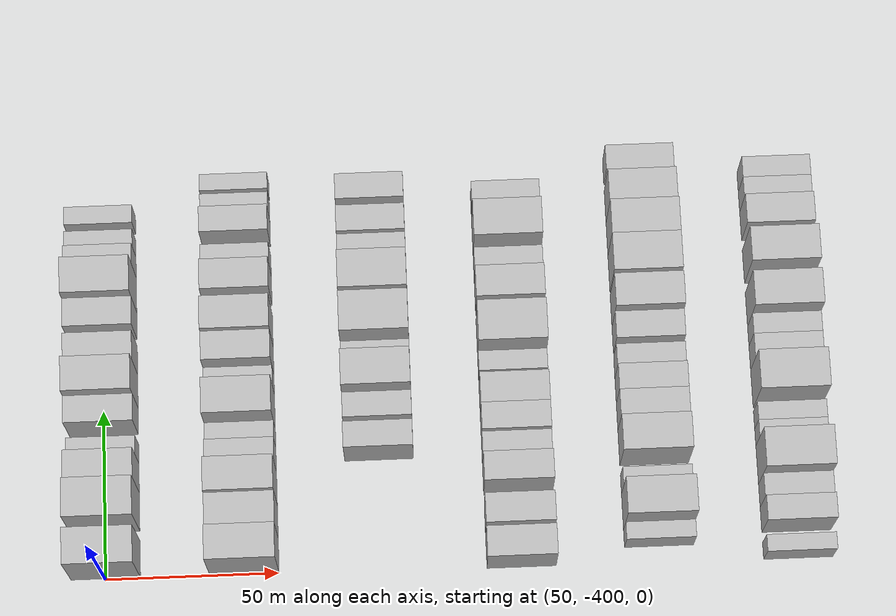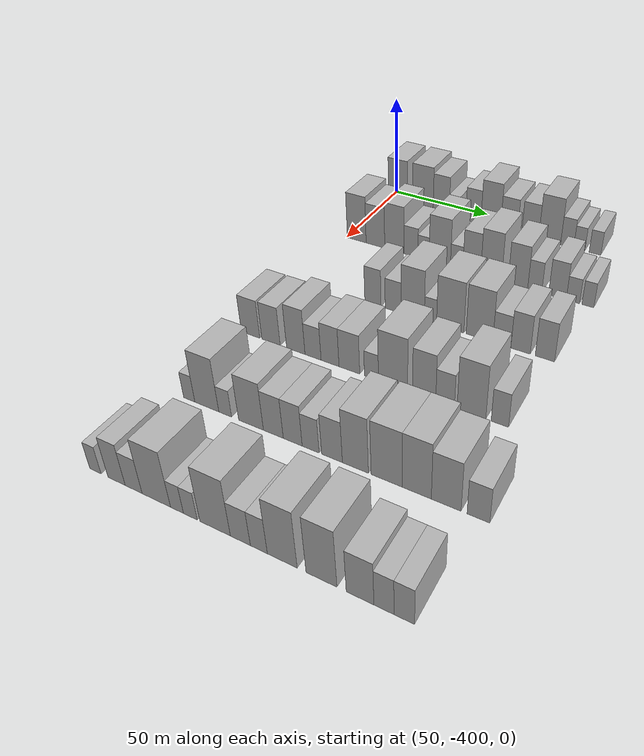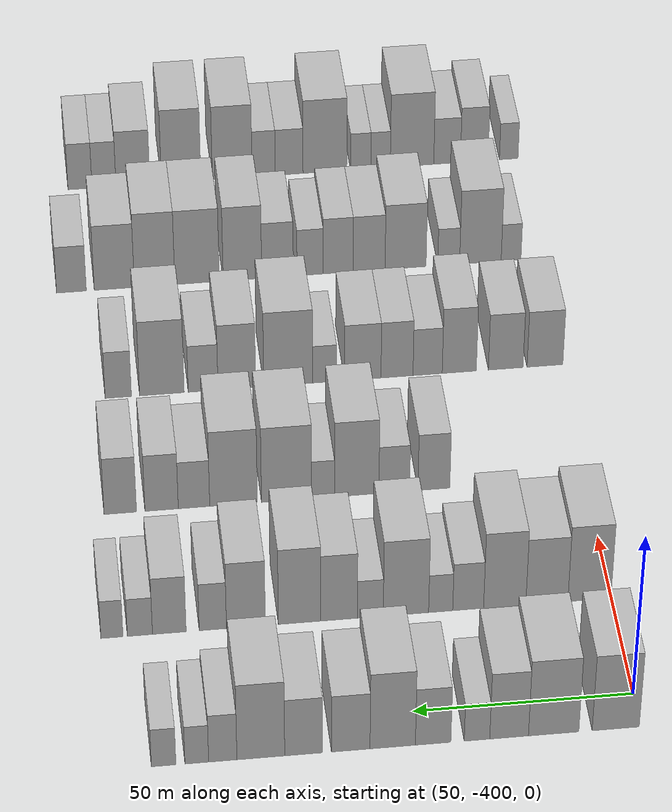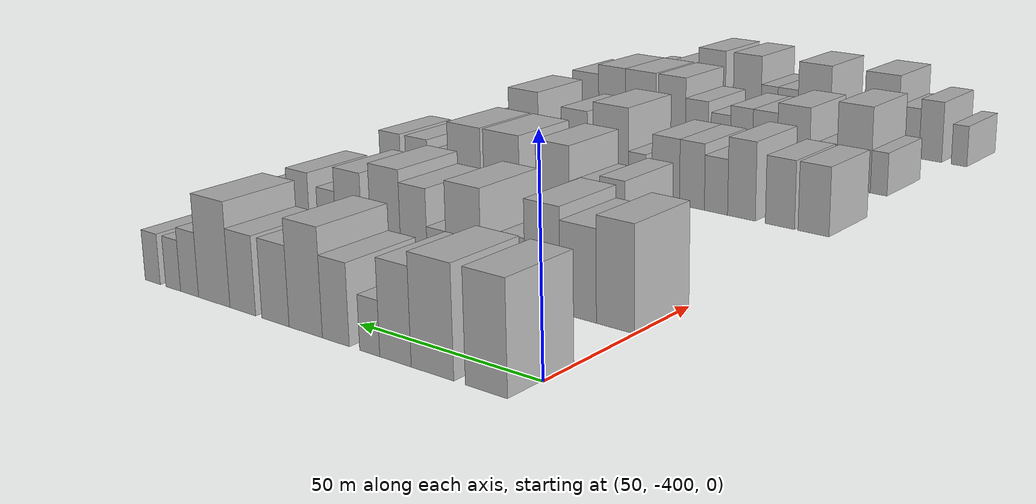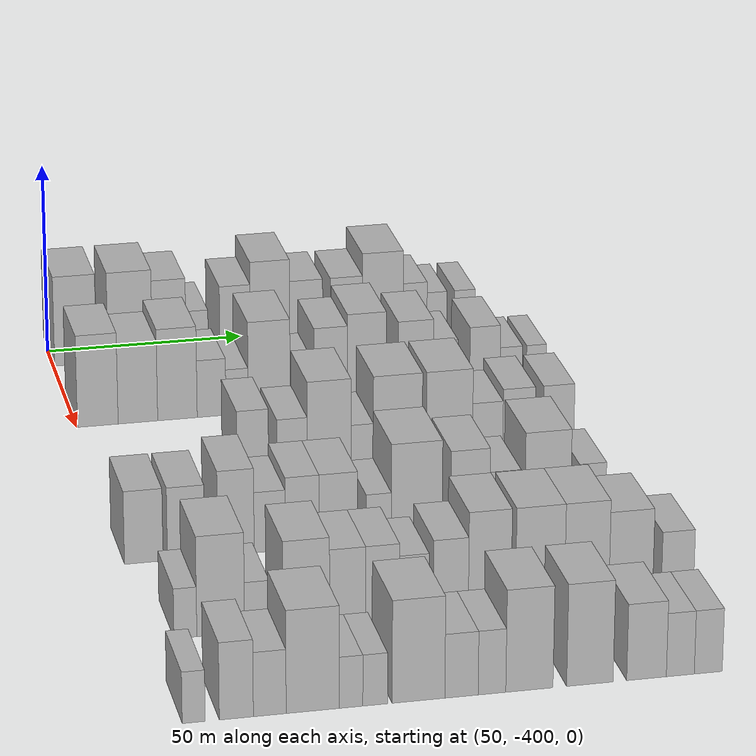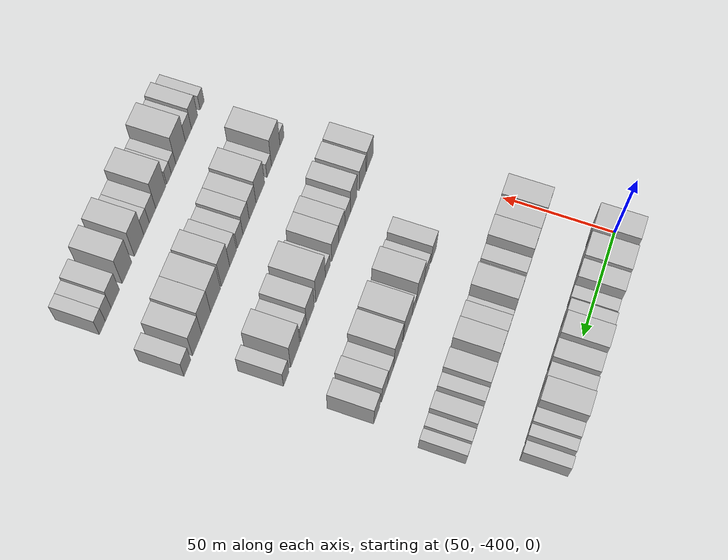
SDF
<sdf version="1.6">
 <world name="default">
  <model name="building_25">
   <static>1</static>
   <pose>50.0000 -394.3219 0 0.000000 0.000000 0.000000</pose>
   <link name="link">
    <pose>0 0 12.00 0 0 0</pose>
    <collision name="collision"><geometry><box><size>20.0000 10.6150 24.0000</size></box></geometry></collision>
    <visual name="visual">
     <cast_shadows>0</cast_shadows>
     <geometry><box><size>20.0000 10.6150 24.0000</size></box></geometry>
     <material>
      <script>
       <uri>model://HANNAS_wall/materials/scripts</uri>
       <uri>model://HANNAS_wall/materials/textures</uri>
       <name>vrc/HANNAS_wall</name>
      </script>
     </material>
    </visual>
   </link>
  </model>
  <model name="building_26">
   <static>1</static>
   <pose>50.0000 -380.3475 0 0.000000 0.000000 0.000000</pose>
   <link name="link">
    <pose>0 0 12.00 0 0 0</pose>
    <collision name="collision"><geometry><box><size>20.0000 11.3338 24.0000</size></box></geometry></collision>
    <visual name="visual">
     <cast_shadows>0</cast_shadows>
     <geometry><box><size>20.0000 11.3338 24.0000</size></box></geometry>
     <material>
      <script>
       <uri>model://HANNAS_wall/materials/scripts</uri>
       <uri>model://HANNAS_wall/materials/textures</uri>
       <name>vrc/HANNAS_wall</name>
      </script>
     </material>
    </visual>
   </link>
  </model>
  <model name="building_27">
   <static>1</static>
   <pose>50.0000 -370.3326 0 0.000000 0.000000 0.000000</pose>
   <link name="link">
    <pose>0 0 10.50 0 0 0</pose>
    <collision name="collision"><geometry><box><size>20.0000 8.6959 21.0000</size></box></geometry></collision>
    <visual name="visual">
     <cast_shadows>0</cast_shadows>
     <geometry><box><size>20.0000 8.6959 21.0000</size></box></geometry>
     <material>
      <script>
       <uri>model://HANNAS_wall/materials/scripts</uri>
       <uri>model://HANNAS_wall/materials/textures</uri>
       <name>vrc/HANNAS_wall</name>
      </script>
     </material>
    </visual>
   </link>
  </model>
  <model name="building_28">
   <static>1</static>
   <pose>50.0000 -363.1280 0 0.000000 0.000000 0.000000</pose>
   <link name="link">
    <pose>0 0 6.00 0 0 0</pose>
    <collision name="collision"><geometry><box><size>20.0000 5.7133 12.0000</size></box></geometry></collision>
    <visual name="visual">
     <cast_shadows>0</cast_shadows>
     <geometry><box><size>20.0000 5.7133 12.0000</size></box></geometry>
     <material>
      <script>
       <uri>model://HANNAS_wall/materials/scripts</uri>
       <uri>model://HANNAS_wall/materials/textures</uri>
       <name>vrc/HANNAS_wall</name>
      </script>
     </material>
    </visual>
   </link>
  </model>
  <model name="building_29">
   <static>1</static>
   <pose>50.0000 -353.3051 0 0.000000 0.000000 0.000000</pose>
   <link name="link">
    <pose>0 0 9.00 0 0 0</pose>
    <collision name="collision"><geometry><box><size>20.0000 7.9326 18.0000</size></box></geometry></collision>
    <visual name="visual">
     <cast_shadows>0</cast_shadows>
     <geometry><box><size>20.0000 7.9326 18.0000</size></box></geometry>
     <material>
      <script>
       <uri>model://HANNAS_wall/materials/scripts</uri>
       <uri>model://HANNAS_wall/materials/textures</uri>
       <name>vrc/HANNAS_wall</name>
      </script>
     </material>
    </visual>
   </link>
  </model>
  <model name="building_30">
   <static>1</static>
   <pose>50.0000 -344.2689 0 0.000000 0.000000 0.000000</pose>
   <link name="link">
    <pose>0 0 12.00 0 0 0</pose>
    <collision name="collision"><geometry><box><size>20.0000 10.1398 24.0000</size></box></geometry></collision>
    <visual name="visual">
     <cast_shadows>0</cast_shadows>
     <geometry><box><size>20.0000 10.1398 24.0000</size></box></geometry>
     <material>
      <script>
       <uri>model://HANNAS_wall/materials/scripts</uri>
       <uri>model://HANNAS_wall/materials/textures</uri>
       <name>vrc/HANNAS_wall</name>
      </script>
     </material>
    </visual>
   </link>
  </model>
  <model name="building_31">
   <static>1</static>
   <pose>50.0000 -334.9038 0 0.000000 0.000000 0.000000</pose>
   <link name="link">
    <pose>0 0 9.00 0 0 0</pose>
    <collision name="collision"><geometry><box><size>20.0000 8.5902 18.0000</size></box></geometry></collision>
    <visual name="visual">
     <cast_shadows>0</cast_shadows>
     <geometry><box><size>20.0000 8.5902 18.0000</size></box></geometry>
     <material>
      <script>
       <uri>model://HANNAS_wall/materials/scripts</uri>
       <uri>model://HANNAS_wall/materials/textures</uri>
       <name>vrc/HANNAS_wall</name>
      </script>
     </material>
    </visual>
   </link>
  </model>
  <model name="building_32">
   <static>1</static>
   <pose>50.0000 -324.4063 0 0.000000 0.000000 0.000000</pose>
   <link name="link">
    <pose>0 0 9.00 0 0 0</pose>
    <collision name="collision"><geometry><box><size>20.0000 8.4047 18.0000</size></box></geometry></collision>
    <visual name="visual">
     <cast_shadows>0</cast_shadows>
     <geometry><box><size>20.0000 8.4047 18.0000</size></box></geometry>
     <material>
      <script>
       <uri>model://HANNAS_wall/materials/scripts</uri>
       <uri>model://HANNAS_wall/materials/textures</uri>
       <name>vrc/HANNAS_wall</name>
      </script>
     </material>
    </visual>
   </link>
  </model>
  <model name="building_33">
   <static>1</static>
   <pose>50.0000 -314.8949 0 0.000000 0.000000 0.000000</pose>
   <link name="link">
    <pose>0 0 12.00 0 0 0</pose>
    <collision name="collision"><geometry><box><size>20.0000 10.6181 24.0000</size></box></geometry></collision>
    <visual name="visual">
     <cast_shadows>0</cast_shadows>
     <geometry><box><size>20.0000 10.6181 24.0000</size></box></geometry>
     <material>
      <script>
       <uri>model://HANNAS_wall/materials/scripts</uri>
       <uri>model://HANNAS_wall/materials/textures</uri>
       <name>vrc/HANNAS_wall</name>
      </script>
     </material>
    </visual>
   </link>
  </model>
  <model name="building_34">
   <static>1</static>
   <pose>50.0000 -306.4508 0 0.000000 0.000000 0.000000</pose>
   <link name="link">
    <pose>0 0 7.50 0 0 0</pose>
    <collision name="collision"><geometry><box><size>20.0000 6.2700 15.0000</size></box></geometry></collision>
    <visual name="visual">
     <cast_shadows>0</cast_shadows>
     <geometry><box><size>20.0000 6.2700 15.0000</size></box></geometry>
     <material>
      <script>
       <uri>model://HANNAS_wall/materials/scripts</uri>
       <uri>model://HANNAS_wall/materials/textures</uri>
       <name>vrc/HANNAS_wall</name>
      </script>
     </material>
    </visual>
   </link>
  </model>
  <model name="building_35">
   <static>1</static>
   <pose>50.0000 -300.6897 0 0.000000 0.000000 0.000000</pose>
   <link name="link">
    <pose>0 0 6.00 0 0 0</pose>
    <collision name="collision"><geometry><box><size>20.0000 5.2523 12.0000</size></box></geometry></collision>
    <visual name="visual">
     <cast_shadows>0</cast_shadows>
     <geometry><box><size>20.0000 5.2523 12.0000</size></box></geometry>
     <material>
      <script>
       <uri>model://HANNAS_wall/materials/scripts</uri>
       <uri>model://HANNAS_wall/materials/textures</uri>
       <name>vrc/HANNAS_wall</name>
      </script>
     </material>
    </visual>
   </link>
  </model>
  <model name="building_36">
   <static>1</static>
   <pose>50.0000 -293.3483 0 0.000000 0.000000 0.000000</pose>
   <link name="link">
    <pose>0 0 6.00 0 0 0</pose>
    <collision name="collision"><geometry><box><size>20.0000 5.4305 12.0000</size></box></geometry></collision>
    <visual name="visual">
     <cast_shadows>0</cast_shadows>
     <geometry><box><size>20.0000 5.4305 12.0000</size></box></geometry>
     <material>
      <script>
       <uri>model://HANNAS_wall/materials/scripts</uri>
       <uri>model://HANNAS_wall/materials/textures</uri>
       <name>vrc/HANNAS_wall</name>
      </script>
     </material>
    </visual>
   </link>
  </model>
  <model name="building_152">
   <static>1</static>
   <pose>90.0000 -394.8087 0 0.000000 0.000000 0.000000</pose>
   <link name="link">
    <pose>0 0 12.00 0 0 0</pose>
    <collision name="collision"><geometry><box><size>20.0000 10.0251 24.0000</size></box></geometry></collision>
    <visual name="visual">
     <cast_shadows>0</cast_shadows>
     <geometry><box><size>20.0000 10.0251 24.0000</size></box></geometry>
     <material>
      <script>
       <uri>model://HANNAS_wall/materials/scripts</uri>
       <uri>model://HANNAS_wall/materials/textures</uri>
       <name>vrc/HANNAS_wall</name>
      </script>
     </material>
    </visual>
   </link>
  </model>
  <model name="building_153">
   <static>1</static>
   <pose>90.0000 -384.9043 0 0.000000 0.000000 0.000000</pose>
   <link name="link">
    <pose>0 0 10.50 0 0 0</pose>
    <collision name="collision"><geometry><box><size>20.0000 9.7839 21.0000</size></box></geometry></collision>
    <visual name="visual">
     <cast_shadows>0</cast_shadows>
     <geometry><box><size>20.0000 9.7839 21.0000</size></box></geometry>
     <material>
      <script>
       <uri>model://HANNAS_wall/materials/scripts</uri>
       <uri>model://HANNAS_wall/materials/textures</uri>
       <name>vrc/HANNAS_wall</name>
      </script>
     </material>
    </visual>
   </link>
  </model>
  <model name="building_154">
   <static>1</static>
   <pose>90.0000 -375.1030 0 0.000000 0.000000 0.000000</pose>
   <link name="link">
    <pose>0 0 12.00 0 0 0</pose>
    <collision name="collision"><geometry><box><size>20.0000 9.8186 24.0000</size></box></geometry></collision>
    <visual name="visual">
     <cast_shadows>0</cast_shadows>
     <geometry><box><size>20.0000 9.8186 24.0000</size></box></geometry>
     <material>
      <script>
       <uri>model://HANNAS_wall/materials/scripts</uri>
       <uri>model://HANNAS_wall/materials/textures</uri>
       <name>vrc/HANNAS_wall</name>
      </script>
     </material>
    </visual>
   </link>
  </model>
  <model name="building_155">
   <static>1</static>
   <pose>90.0000 -366.6122 0 0.000000 0.000000 0.000000</pose>
   <link name="link">
    <pose>0 0 7.50 0 0 0</pose>
    <collision name="collision"><geometry><box><size>20.0000 7.1632 15.0000</size></box></geometry></collision>
    <visual name="visual">
     <cast_shadows>0</cast_shadows>
     <geometry><box><size>20.0000 7.1632 15.0000</size></box></geometry>
     <material>
      <script>
       <uri>model://HANNAS_wall/materials/scripts</uri>
       <uri>model://HANNAS_wall/materials/textures</uri>
       <name>vrc/HANNAS_wall</name>
      </script>
     </material>
    </visual>
   </link>
  </model>
  <model name="building_156">
   <static>1</static>
   <pose>90.0000 -360.2390 0 0.000000 0.000000 0.000000</pose>
   <link name="link">
    <pose>0 0 6.00 0 0 0</pose>
    <collision name="collision"><geometry><box><size>20.0000 5.5831 12.0000</size></box></geometry></collision>
    <visual name="visual">
     <cast_shadows>0</cast_shadows>
     <geometry><box><size>20.0000 5.5831 12.0000</size></box></geometry>
     <material>
      <script>
       <uri>model://HANNAS_wall/materials/scripts</uri>
       <uri>model://HANNAS_wall/materials/textures</uri>
       <name>vrc/HANNAS_wall</name>
      </script>
     </material>
    </visual>
   </link>
  </model>
  <model name="building_157">
   <static>1</static>
   <pose>90.0000 -352.2044 0 0.000000 0.000000 0.000000</pose>
   <link name="link">
    <pose>0 0 12.00 0 0 0</pose>
    <collision name="collision"><geometry><box><size>20.0000 10.4861 24.0000</size></box></geometry></collision>
    <visual name="visual">
     <cast_shadows>0</cast_shadows>
     <geometry><box><size>20.0000 10.4861 24.0000</size></box></geometry>
     <material>
      <script>
       <uri>model://HANNAS_wall/materials/scripts</uri>
       <uri>model://HANNAS_wall/materials/textures</uri>
       <name>vrc/HANNAS_wall</name>
      </script>
     </material>
    </visual>
   </link>
  </model>
  <model name="building_158">
   <static>1</static>
   <pose>90.0000 -343.9725 0 0.000000 0.000000 0.000000</pose>
   <link name="link">
    <pose>0 0 6.00 0 0 0</pose>
    <collision name="collision"><geometry><box><size>20.0000 5.9776 12.0000</size></box></geometry></collision>
    <visual name="visual">
     <cast_shadows>0</cast_shadows>
     <geometry><box><size>20.0000 5.9776 12.0000</size></box></geometry>
     <material>
      <script>
       <uri>model://HANNAS_wall/materials/scripts</uri>
       <uri>model://HANNAS_wall/materials/textures</uri>
       <name>vrc/HANNAS_wall</name>
      </script>
     </material>
    </visual>
   </link>
  </model>
  <model name="building_159">
   <static>1</static>
   <pose>90.0000 -336.7639 0 0.000000 0.000000 0.000000</pose>
   <link name="link">
    <pose>0 0 10.50 0 0 0</pose>
    <collision name="collision"><geometry><box><size>20.0000 8.4398 21.0000</size></box></geometry></collision>
    <visual name="visual">
     <cast_shadows>0</cast_shadows>
     <geometry><box><size>20.0000 8.4398 21.0000</size></box></geometry>
     <material>
      <script>
       <uri>model://HANNAS_wall/materials/scripts</uri>
       <uri>model://HANNAS_wall/materials/textures</uri>
       <name>vrc/HANNAS_wall</name>
      </script>
     </material>
    </visual>
   </link>
  </model>
  <model name="building_160">
   <static>1</static>
   <pose>90.0000 -327.6644 0 0.000000 0.000000 0.000000</pose>
   <link name="link">
    <pose>0 0 12.00 0 0 0</pose>
    <collision name="collision"><geometry><box><size>20.0000 9.7591 24.0000</size></box></geometry></collision>
    <visual name="visual">
     <cast_shadows>0</cast_shadows>
     <geometry><box><size>20.0000 9.7591 24.0000</size></box></geometry>
     <material>
      <script>
       <uri>model://HANNAS_wall/materials/scripts</uri>
       <uri>model://HANNAS_wall/materials/textures</uri>
       <name>vrc/HANNAS_wall</name>
      </script>
     </material>
    </visual>
   </link>
  </model>
  <model name="building_161">
   <static>1</static>
   <pose>90.0000 -315.3187 0 0.000000 0.000000 0.000000</pose>
   <link name="link">
    <pose>0 0 10.50 0 0 0</pose>
    <collision name="collision"><geometry><box><size>20.0000 8.9324 21.0000</size></box></geometry></collision>
    <visual name="visual">
     <cast_shadows>0</cast_shadows>
     <geometry><box><size>20.0000 8.9324 21.0000</size></box></geometry>
     <material>
      <script>
       <uri>model://HANNAS_wall/materials/scripts</uri>
       <uri>model://HANNAS_wall/materials/textures</uri>
       <name>vrc/HANNAS_wall</name>
      </script>
     </material>
    </visual>
   </link>
  </model>
  <model name="building_162">
   <static>1</static>
   <pose>90.0000 -307.7284 0 0.000000 0.000000 0.000000</pose>
   <link name="link">
    <pose>0 0 7.50 0 0 0</pose>
    <collision name="collision"><geometry><box><size>20.0000 6.2482 15.0000</size></box></geometry></collision>
    <visual name="visual">
     <cast_shadows>0</cast_shadows>
     <geometry><box><size>20.0000 6.2482 15.0000</size></box></geometry>
     <material>
      <script>
       <uri>model://HANNAS_wall/materials/scripts</uri>
       <uri>model://HANNAS_wall/materials/textures</uri>
       <name>vrc/HANNAS_wall</name>
      </script>
     </material>
    </visual>
   </link>
  </model>
  <model name="building_163">
   <static>1</static>
   <pose>90.0000 -297.7498 0 0.000000 0.000000 0.000000</pose>
   <link name="link">
    <pose>0 0 9.00 0 0 0</pose>
    <collision name="collision"><geometry><box><size>20.0000 7.7090 18.0000</size></box></geometry></collision>
    <visual name="visual">
     <cast_shadows>0</cast_shadows>
     <geometry><box><size>20.0000 7.7090 18.0000</size></box></geometry>
     <material>
      <script>
       <uri>model://HANNAS_wall/materials/scripts</uri>
       <uri>model://HANNAS_wall/materials/textures</uri>
       <name>vrc/HANNAS_wall</name>
      </script>
     </material>
    </visual>
   </link>
  </model>
  <model name="building_164">
   <static>1</static>
   <pose>90.0000 -291.0226 0 0.000000 0.000000 0.000000</pose>
   <link name="link">
    <pose>0 0 6.00 0 0 0</pose>
    <collision name="collision"><geometry><box><size>20.0000 5.7454 12.0000</size></box></geometry></collision>
    <visual name="visual">
     <cast_shadows>0</cast_shadows>
     <geometry><box><size>20.0000 5.7454 12.0000</size></box></geometry>
     <material>
      <script>
       <uri>model://HANNAS_wall/materials/scripts</uri>
       <uri>model://HANNAS_wall/materials/textures</uri>
       <name>vrc/HANNAS_wall</name>
      </script>
     </material>
    </visual>
   </link>
  </model>
  <model name="building_165">
   <static>1</static>
   <pose>90.0000 -284.6252 0 0.000000 0.000000 0.000000</pose>
   <link name="link">
    <pose>0 0 6.00 0 0 0</pose>
    <collision name="collision"><geometry><box><size>20.0000 5.0494 12.0000</size></box></geometry></collision>
    <visual name="visual">
     <cast_shadows>0</cast_shadows>
     <geometry><box><size>20.0000 5.0494 12.0000</size></box></geometry>
     <material>
      <script>
       <uri>model://HANNAS_wall/materials/scripts</uri>
       <uri>model://HANNAS_wall/materials/textures</uri>
       <name>vrc/HANNAS_wall</name>
      </script>
     </material>
    </visual>
   </link>
  </model>
  <model name="building_288">
   <static>1</static>
   <pose>130.0000 -363.8670 0 0.000000 0.000000 0.000000</pose>
   <link name="link">
    <pose>0 0 9.00 0 0 0</pose>
    <collision name="collision"><geometry><box><size>20.0000 7.6193 18.0000</size></box></geometry></collision>
    <visual name="visual">
     <cast_shadows>0</cast_shadows>
     <geometry><box><size>20.0000 7.6193 18.0000</size></box></geometry>
     <material>
      <script>
       <uri>model://HANNAS_wall/materials/scripts</uri>
       <uri>model://HANNAS_wall/materials/textures</uri>
       <name>vrc/HANNAS_wall</name>
      </script>
     </material>
    </visual>
   </link>
  </model>
  <model name="building_289">
   <static>1</static>
   <pose>130.0000 -354.3891 0 0.000000 0.000000 0.000000</pose>
   <link name="link">
    <pose>0 0 7.50 0 0 0</pose>
    <collision name="collision"><geometry><box><size>20.0000 7.3364 15.0000</size></box></geometry></collision>
    <visual name="visual">
     <cast_shadows>0</cast_shadows>
     <geometry><box><size>20.0000 7.3364 15.0000</size></box></geometry>
     <material>
      <script>
       <uri>model://HANNAS_wall/materials/scripts</uri>
       <uri>model://HANNAS_wall/materials/textures</uri>
       <name>vrc/HANNAS_wall</name>
      </script>
     </material>
    </visual>
   </link>
  </model>
  <model name="building_290">
   <static>1</static>
   <pose>130.0000 -345.4301 0 0.000000 0.000000 0.000000</pose>
   <link name="link">
    <pose>0 0 12.00 0 0 0</pose>
    <collision name="collision"><geometry><box><size>20.0000 10.5818 24.0000</size></box></geometry></collision>
    <visual name="visual">
     <cast_shadows>0</cast_shadows>
     <geometry><box><size>20.0000 10.5818 24.0000</size></box></geometry>
     <material>
      <script>
       <uri>model://HANNAS_wall/materials/scripts</uri>
       <uri>model://HANNAS_wall/materials/textures</uri>
       <name>vrc/HANNAS_wall</name>
      </script>
     </material>
    </visual>
   </link>
  </model>
  <model name="building_291">
   <static>1</static>
   <pose>130.0000 -337.4104 0 0.000000 0.000000 0.000000</pose>
   <link name="link">
    <pose>0 0 6.00 0 0 0</pose>
    <collision name="collision"><geometry><box><size>20.0000 5.4574 12.0000</size></box></geometry></collision>
    <visual name="visual">
     <cast_shadows>0</cast_shadows>
     <geometry><box><size>20.0000 5.4574 12.0000</size></box></geometry>
     <material>
      <script>
       <uri>model://HANNAS_wall/materials/scripts</uri>
       <uri>model://HANNAS_wall/materials/textures</uri>
       <name>vrc/HANNAS_wall</name>
      </script>
     </material>
    </visual>
   </link>
  </model>
  <model name="building_292">
   <static>1</static>
   <pose>130.0000 -328.7265 0 0.000000 0.000000 0.000000</pose>
   <link name="link">
    <pose>0 0 12.00 0 0 0</pose>
    <collision name="collision"><geometry><box><size>20.0000 11.9105 24.0000</size></box></geometry></collision>
    <visual name="visual">
     <cast_shadows>0</cast_shadows>
     <geometry><box><size>20.0000 11.9105 24.0000</size></box></geometry>
     <material>
      <script>
       <uri>model://HANNAS_wall/materials/scripts</uri>
       <uri>model://HANNAS_wall/materials/textures</uri>
       <name>vrc/HANNAS_wall</name>
      </script>
     </material>
    </visual>
   </link>
  </model>
  <model name="building_293">
   <static>1</static>
   <pose>130.0000 -316.1208 0 0.000000 0.000000 0.000000</pose>
   <link name="link">
    <pose>0 0 12.00 0 0 0</pose>
    <collision name="collision"><geometry><box><size>20.0000 11.3008 24.0000</size></box></geometry></collision>
    <visual name="visual">
     <cast_shadows>0</cast_shadows>
     <geometry><box><size>20.0000 11.3008 24.0000</size></box></geometry>
     <material>
      <script>
       <uri>model://HANNAS_wall/materials/scripts</uri>
       <uri>model://HANNAS_wall/materials/textures</uri>
       <name>vrc/HANNAS_wall</name>
      </script>
     </material>
    </visual>
   </link>
  </model>
  <model name="building_294">
   <static>1</static>
   <pose>130.0000 -306.7456 0 0.000000 0.000000 0.000000</pose>
   <link name="link">
    <pose>0 0 7.50 0 0 0</pose>
    <collision name="collision"><geometry><box><size>20.0000 7.4498 15.0000</size></box></geometry></collision>
    <visual name="visual">
     <cast_shadows>0</cast_shadows>
     <geometry><box><size>20.0000 7.4498 15.0000</size></box></geometry>
     <material>
      <script>
       <uri>model://HANNAS_wall/materials/scripts</uri>
       <uri>model://HANNAS_wall/materials/textures</uri>
       <name>vrc/HANNAS_wall</name>
      </script>
     </material>
    </visual>
   </link>
  </model>
  <model name="building_295">
   <static>1</static>
   <pose>130.0000 -299.0761 0 0.000000 0.000000 0.000000</pose>
   <link name="link">
    <pose>0 0 9.00 0 0 0</pose>
    <collision name="collision"><geometry><box><size>20.0000 7.8892 18.0000</size></box></geometry></collision>
    <visual name="visual">
     <cast_shadows>0</cast_shadows>
     <geometry><box><size>20.0000 7.8892 18.0000</size></box></geometry>
     <material>
      <script>
       <uri>model://HANNAS_wall/materials/scripts</uri>
       <uri>model://HANNAS_wall/materials/textures</uri>
       <name>vrc/HANNAS_wall</name>
      </script>
     </material>
    </visual>
   </link>
  </model>
  <model name="building_296">
   <static>1</static>
   <pose>130.0000 -289.2991 0 0.000000 0.000000 0.000000</pose>
   <link name="link">
    <pose>0 0 9.00 0 0 0</pose>
    <collision name="collision"><geometry><box><size>20.0000 7.6648 18.0000</size></box></geometry></collision>
    <visual name="visual">
     <cast_shadows>0</cast_shadows>
     <geometry><box><size>20.0000 7.6648 18.0000</size></box></geometry>
     <material>
      <script>
       <uri>model://HANNAS_wall/materials/scripts</uri>
       <uri>model://HANNAS_wall/materials/textures</uri>
       <name>vrc/HANNAS_wall</name>
      </script>
     </material>
    </visual>
   </link>
  </model>
  <model name="building_423">
   <static>1</static>
   <pose>170.0000 -396.5882 0 0.000000 0.000000 0.000000</pose>
   <link name="link">
    <pose>0 0 9.00 0 0 0</pose>
    <collision name="collision"><geometry><box><size>20.0000 8.8691 18.0000</size></box></geometry></collision>
    <visual name="visual">
     <cast_shadows>0</cast_shadows>
     <geometry><box><size>20.0000 8.8691 18.0000</size></box></geometry>
     <material>
      <script>
       <uri>model://HANNAS_wall/materials/scripts</uri>
       <uri>model://HANNAS_wall/materials/textures</uri>
       <name>vrc/HANNAS_wall</name>
      </script>
     </material>
    </visual>
   </link>
  </model>
  <model name="building_424">
   <static>1</static>
   <pose>170.0000 -386.8566 0 0.000000 0.000000 0.000000</pose>
   <link name="link">
    <pose>0 0 9.00 0 0 0</pose>
    <collision name="collision"><geometry><box><size>20.0000 8.5940 18.0000</size></box></geometry></collision>
    <visual name="visual">
     <cast_shadows>0</cast_shadows>
     <geometry><box><size>20.0000 8.5940 18.0000</size></box></geometry>
     <material>
      <script>
       <uri>model://HANNAS_wall/materials/scripts</uri>
       <uri>model://HANNAS_wall/materials/textures</uri>
       <name>vrc/HANNAS_wall</name>
      </script>
     </material>
    </visual>
   </link>
  </model>
  <model name="building_425">
   <static>1</static>
   <pose>170.0000 -375.3419 0 0.000000 0.000000 0.000000</pose>
   <link name="link">
    <pose>0 0 10.50 0 0 0</pose>
    <collision name="collision"><geometry><box><size>20.0000 8.4355 21.0000</size></box></geometry></collision>
    <visual name="visual">
     <cast_shadows>0</cast_shadows>
     <geometry><box><size>20.0000 8.4355 21.0000</size></box></geometry>
     <material>
      <script>
       <uri>model://HANNAS_wall/materials/scripts</uri>
       <uri>model://HANNAS_wall/materials/textures</uri>
       <name>vrc/HANNAS_wall</name>
      </script>
     </material>
    </visual>
   </link>
  </model>
  <model name="building_426">
   <static>1</static>
   <pose>170.0000 -367.5166 0 0.000000 0.000000 0.000000</pose>
   <link name="link">
    <pose>0 0 7.50 0 0 0</pose>
    <collision name="collision"><geometry><box><size>20.0000 7.2151 15.0000</size></box></geometry></collision>
    <visual name="visual">
     <cast_shadows>0</cast_shadows>
     <geometry><box><size>20.0000 7.2151 15.0000</size></box></geometry>
     <material>
      <script>
       <uri>model://HANNAS_wall/materials/scripts</uri>
       <uri>model://HANNAS_wall/materials/textures</uri>
       <name>vrc/HANNAS_wall</name>
      </script>
     </material>
    </visual>
   </link>
  </model>
  <model name="building_427">
   <static>1</static>
   <pose>170.0000 -359.9571 0 0.000000 0.000000 0.000000</pose>
   <link name="link">
    <pose>0 0 9.00 0 0 0</pose>
    <collision name="collision"><geometry><box><size>20.0000 7.9039 18.0000</size></box></geometry></collision>
    <visual name="visual">
     <cast_shadows>0</cast_shadows>
     <geometry><box><size>20.0000 7.9039 18.0000</size></box></geometry>
     <material>
      <script>
       <uri>model://HANNAS_wall/materials/scripts</uri>
       <uri>model://HANNAS_wall/materials/textures</uri>
       <name>vrc/HANNAS_wall</name>
      </script>
     </material>
    </visual>
   </link>
  </model>
  <model name="building_428">
   <static>1</static>
   <pose>170.0000 -351.5318 0 0.000000 0.000000 0.000000</pose>
   <link name="link">
    <pose>0 0 9.00 0 0 0</pose>
    <collision name="collision"><geometry><box><size>20.0000 8.9468 18.0000</size></box></geometry></collision>
    <visual name="visual">
     <cast_shadows>0</cast_shadows>
     <geometry><box><size>20.0000 8.9468 18.0000</size></box></geometry>
     <material>
      <script>
       <uri>model://HANNAS_wall/materials/scripts</uri>
       <uri>model://HANNAS_wall/materials/textures</uri>
       <name>vrc/HANNAS_wall</name>
      </script>
     </material>
    </visual>
   </link>
  </model>
  <model name="building_429">
   <static>1</static>
   <pose>170.0000 -342.1052 0 0.000000 0.000000 0.000000</pose>
   <link name="link">
    <pose>0 0 6.00 0 0 0</pose>
    <collision name="collision"><geometry><box><size>20.0000 5.9064 12.0000</size></box></geometry></collision>
    <visual name="visual">
     <cast_shadows>0</cast_shadows>
     <geometry><box><size>20.0000 5.9064 12.0000</size></box></geometry>
     <material>
      <script>
       <uri>model://HANNAS_wall/materials/scripts</uri>
       <uri>model://HANNAS_wall/materials/textures</uri>
       <name>vrc/HANNAS_wall</name>
      </script>
     </material>
    </visual>
   </link>
  </model>
  <model name="building_430">
   <static>1</static>
   <pose>170.0000 -333.1691 0 0.000000 0.000000 0.000000</pose>
   <link name="link">
    <pose>0 0 12.00 0 0 0</pose>
    <collision name="collision"><geometry><box><size>20.0000 11.9658 24.0000</size></box></geometry></collision>
    <visual name="visual">
     <cast_shadows>0</cast_shadows>
     <geometry><box><size>20.0000 11.9658 24.0000</size></box></geometry>
     <material>
      <script>
       <uri>model://HANNAS_wall/materials/scripts</uri>
       <uri>model://HANNAS_wall/materials/textures</uri>
       <name>vrc/HANNAS_wall</name>
      </script>
     </material>
    </visual>
   </link>
  </model>
  <model name="building_431">
   <static>1</static>
   <pose>170.0000 -320.5697 0 0.000000 0.000000 0.000000</pose>
   <link name="link">
    <pose>0 0 10.50 0 0 0</pose>
    <collision name="collision"><geometry><box><size>20.0000 9.2330 21.0000</size></box></geometry></collision>
    <visual name="visual">
     <cast_shadows>0</cast_shadows>
     <geometry><box><size>20.0000 9.2330 21.0000</size></box></geometry>
     <material>
      <script>
       <uri>model://HANNAS_wall/materials/scripts</uri>
       <uri>model://HANNAS_wall/materials/textures</uri>
       <name>vrc/HANNAS_wall</name>
      </script>
     </material>
    </visual>
   </link>
  </model>
  <model name="building_432">
   <static>1</static>
   <pose>170.0000 -312.3122 0 0.000000 0.000000 0.000000</pose>
   <link name="link">
    <pose>0 0 7.50 0 0 0</pose>
    <collision name="collision"><geometry><box><size>20.0000 7.2821 15.0000</size></box></geometry></collision>
    <visual name="visual">
     <cast_shadows>0</cast_shadows>
     <geometry><box><size>20.0000 7.2821 15.0000</size></box></geometry>
     <material>
      <script>
       <uri>model://HANNAS_wall/materials/scripts</uri>
       <uri>model://HANNAS_wall/materials/textures</uri>
       <name>vrc/HANNAS_wall</name>
      </script>
     </material>
    </visual>
   </link>
  </model>
  <model name="building_433">
   <static>1</static>
   <pose>170.0000 -302.2268 0 0.000000 0.000000 0.000000</pose>
   <link name="link">
    <pose>0 0 12.00 0 0 0</pose>
    <collision name="collision"><geometry><box><size>20.0000 10.8887 24.0000</size></box></geometry></collision>
    <visual name="visual">
     <cast_shadows>0</cast_shadows>
     <geometry><box><size>20.0000 10.8887 24.0000</size></box></geometry>
     <material>
      <script>
       <uri>model://HANNAS_wall/materials/scripts</uri>
       <uri>model://HANNAS_wall/materials/textures</uri>
       <name>vrc/HANNAS_wall</name>
      </script>
     </material>
    </visual>
   </link>
  </model>
  <model name="building_434">
   <static>1</static>
   <pose>170.0000 -291.5746 0 0.000000 0.000000 0.000000</pose>
   <link name="link">
    <pose>0 0 7.50 0 0 0</pose>
    <collision name="collision"><geometry><box><size>20.0000 6.4157 15.0000</size></box></geometry></collision>
    <visual name="visual">
     <cast_shadows>0</cast_shadows>
     <geometry><box><size>20.0000 6.4157 15.0000</size></box></geometry>
     <material>
      <script>
       <uri>model://HANNAS_wall/materials/scripts</uri>
       <uri>model://HANNAS_wall/materials/textures</uri>
       <name>vrc/HANNAS_wall</name>
      </script>
     </material>
    </visual>
   </link>
  </model>
  <model name="building_563">
   <static>1</static>
   <pose>210.0000 -393.9722 0 0.000000 0.000000 0.000000</pose>
   <link name="link">
    <pose>0 0 6.00 0 0 0</pose>
    <collision name="collision"><geometry><box><size>20.0000 5.0596 12.0000</size></box></geometry></collision>
    <visual name="visual">
     <cast_shadows>0</cast_shadows>
     <geometry><box><size>20.0000 5.0596 12.0000</size></box></geometry>
     <material>
      <script>
       <uri>model://HANNAS_wall/materials/scripts</uri>
       <uri>model://HANNAS_wall/materials/textures</uri>
       <name>vrc/HANNAS_wall</name>
      </script>
     </material>
    </visual>
   </link>
  </model>
  <model name="building_564">
   <static>1</static>
   <pose>210.0000 -386.1368 0 0.000000 0.000000 0.000000</pose>
   <link name="link">
    <pose>0 0 12.00 0 0 0</pose>
    <collision name="collision"><geometry><box><size>20.0000 10.6112 24.0000</size></box></geometry></collision>
    <visual name="visual">
     <cast_shadows>0</cast_shadows>
     <geometry><box><size>20.0000 10.6112 24.0000</size></box></geometry>
     <material>
      <script>
       <uri>model://HANNAS_wall/materials/scripts</uri>
       <uri>model://HANNAS_wall/materials/textures</uri>
       <name>vrc/HANNAS_wall</name>
      </script>
     </material>
    </visual>
   </link>
  </model>
  <model name="building_565">
   <static>1</static>
   <pose>210.0000 -378.0502 0 0.000000 0.000000 0.000000</pose>
   <link name="link">
    <pose>0 0 6.00 0 0 0</pose>
    <collision name="collision"><geometry><box><size>20.0000 5.5619 12.0000</size></box></geometry></collision>
    <visual name="visual">
     <cast_shadows>0</cast_shadows>
     <geometry><box><size>20.0000 5.5619 12.0000</size></box></geometry>
     <material>
      <script>
       <uri>model://HANNAS_wall/materials/scripts</uri>
       <uri>model://HANNAS_wall/materials/textures</uri>
       <name>vrc/HANNAS_wall</name>
      </script>
     </material>
    </visual>
   </link>
  </model>
  <model name="building_566">
   <static>1</static>
   <pose>210.0000 -367.0544 0 0.000000 0.000000 0.000000</pose>
   <link name="link">
    <pose>0 0 10.50 0 0 0</pose>
    <collision name="collision"><geometry><box><size>20.0000 10.4298 21.0000</size></box></geometry></collision>
    <visual name="visual">
     <cast_shadows>0</cast_shadows>
     <geometry><box><size>20.0000 10.4298 21.0000</size></box></geometry>
     <material>
      <script>
       <uri>model://HANNAS_wall/materials/scripts</uri>
       <uri>model://HANNAS_wall/materials/textures</uri>
       <name>vrc/HANNAS_wall</name>
      </script>
     </material>
    </visual>
   </link>
  </model>
  <model name="building_567">
   <static>1</static>
   <pose>210.0000 -357.7720 0 0.000000 0.000000 0.000000</pose>
   <link name="link">
    <pose>0 0 9.00 0 0 0</pose>
    <collision name="collision"><geometry><box><size>20.0000 8.1350 18.0000</size></box></geometry></collision>
    <visual name="visual">
     <cast_shadows>0</cast_shadows>
     <geometry><box><size>20.0000 8.1350 18.0000</size></box></geometry>
     <material>
      <script>
       <uri>model://HANNAS_wall/materials/scripts</uri>
       <uri>model://HANNAS_wall/materials/textures</uri>
       <name>vrc/HANNAS_wall</name>
      </script>
     </material>
    </visual>
   </link>
  </model>
  <model name="building_568">
   <static>1</static>
   <pose>210.0000 -349.9142 0 0.000000 0.000000 0.000000</pose>
   <link name="link">
    <pose>0 0 9.00 0 0 0</pose>
    <collision name="collision"><geometry><box><size>20.0000 7.5805 18.0000</size></box></geometry></collision>
    <visual name="visual">
     <cast_shadows>0</cast_shadows>
     <geometry><box><size>20.0000 7.5805 18.0000</size></box></geometry>
     <material>
      <script>
       <uri>model://HANNAS_wall/materials/scripts</uri>
       <uri>model://HANNAS_wall/materials/textures</uri>
       <name>vrc/HANNAS_wall</name>
      </script>
     </material>
    </visual>
   </link>
  </model>
  <model name="building_569">
   <static>1</static>
   <pose>210.0000 -342.7987 0 0.000000 0.000000 0.000000</pose>
   <link name="link">
    <pose>0 0 7.50 0 0 0</pose>
    <collision name="collision"><geometry><box><size>20.0000 6.6505 15.0000</size></box></geometry></collision>
    <visual name="visual">
     <cast_shadows>0</cast_shadows>
     <geometry><box><size>20.0000 6.6505 15.0000</size></box></geometry>
     <material>
      <script>
       <uri>model://HANNAS_wall/materials/scripts</uri>
       <uri>model://HANNAS_wall/materials/textures</uri>
       <name>vrc/HANNAS_wall</name>
      </script>
     </material>
    </visual>
   </link>
  </model>
  <model name="building_570">
   <static>1</static>
   <pose>210.0000 -334.5000 0 0.000000 0.000000 0.000000</pose>
   <link name="link">
    <pose>0 0 9.00 0 0 0</pose>
    <collision name="collision"><geometry><box><size>20.0000 7.9470 18.0000</size></box></geometry></collision>
    <visual name="visual">
     <cast_shadows>0</cast_shadows>
     <geometry><box><size>20.0000 7.9470 18.0000</size></box></geometry>
     <material>
      <script>
       <uri>model://HANNAS_wall/materials/scripts</uri>
       <uri>model://HANNAS_wall/materials/textures</uri>
       <name>vrc/HANNAS_wall</name>
      </script>
     </material>
    </visual>
   </link>
  </model>
  <model name="building_571">
   <static>1</static>
   <pose>210.0000 -325.6619 0 0.000000 0.000000 0.000000</pose>
   <link name="link">
    <pose>0 0 12.00 0 0 0</pose>
    <collision name="collision"><geometry><box><size>20.0000 9.7293 24.0000</size></box></geometry></collision>
    <visual name="visual">
     <cast_shadows>0</cast_shadows>
     <geometry><box><size>20.0000 9.7293 24.0000</size></box></geometry>
     <material>
      <script>
       <uri>model://HANNAS_wall/materials/scripts</uri>
       <uri>model://HANNAS_wall/materials/textures</uri>
       <name>vrc/HANNAS_wall</name>
      </script>
     </material>
    </visual>
   </link>
  </model>
  <model name="building_572">
   <static>1</static>
   <pose>210.0000 -314.1936 0 0.000000 0.000000 0.000000</pose>
   <link name="link">
    <pose>0 0 12.00 0 0 0</pose>
    <collision name="collision"><geometry><box><size>20.0000 11.2071 24.0000</size></box></geometry></collision>
    <visual name="visual">
     <cast_shadows>0</cast_shadows>
     <geometry><box><size>20.0000 11.2071 24.0000</size></box></geometry>
     <material>
      <script>
       <uri>model://HANNAS_wall/materials/scripts</uri>
       <uri>model://HANNAS_wall/materials/textures</uri>
       <name>vrc/HANNAS_wall</name>
      </script>
     </material>
    </visual>
   </link>
  </model>
  <model name="building_573">
   <static>1</static>
   <pose>210.0000 -303.4889 0 0.000000 0.000000 0.000000</pose>
   <link name="link">
    <pose>0 0 12.00 0 0 0</pose>
    <collision name="collision"><geometry><box><size>20.0000 10.2023 24.0000</size></box></geometry></collision>
    <visual name="visual">
     <cast_shadows>0</cast_shadows>
     <geometry><box><size>20.0000 10.2023 24.0000</size></box></geometry>
     <material>
      <script>
       <uri>model://HANNAS_wall/materials/scripts</uri>
       <uri>model://HANNAS_wall/materials/textures</uri>
       <name>vrc/HANNAS_wall</name>
      </script>
     </material>
    </visual>
   </link>
  </model>
  <model name="building_574">
   <static>1</static>
   <pose>210.0000 -293.3403 0 0.000000 0.000000 0.000000</pose>
   <link name="link">
    <pose>0 0 10.50 0 0 0</pose>
    <collision name="collision"><geometry><box><size>20.0000 10.0949 21.0000</size></box></geometry></collision>
    <visual name="visual">
     <cast_shadows>0</cast_shadows>
     <geometry><box><size>20.0000 10.0949 21.0000</size></box></geometry>
     <material>
      <script>
       <uri>model://HANNAS_wall/materials/scripts</uri>
       <uri>model://HANNAS_wall/materials/textures</uri>
       <name>vrc/HANNAS_wall</name>
      </script>
     </material>
    </visual>
   </link>
  </model>
  <model name="building_575">
   <static>1</static>
   <pose>210.0000 -282.5522 0 0.000000 0.000000 0.000000</pose>
   <link name="link">
    <pose>0 0 7.50 0 0 0</pose>
    <collision name="collision"><geometry><box><size>20.0000 7.4814 15.0000</size></box></geometry></collision>
    <visual name="visual">
     <cast_shadows>0</cast_shadows>
     <geometry><box><size>20.0000 7.4814 15.0000</size></box></geometry>
     <material>
      <script>
       <uri>model://HANNAS_wall/materials/scripts</uri>
       <uri>model://HANNAS_wall/materials/textures</uri>
       <name>vrc/HANNAS_wall</name>
      </script>
     </material>
    </visual>
   </link>
  </model>
  <model name="building_698">
   <static>1</static>
   <pose>250.0000 -399.1590 0 0.000000 0.000000 0.000000</pose>
   <link name="link">
    <pose>0 0 6.00 0 0 0</pose>
    <collision name="collision"><geometry><box><size>20.0000 4.8964 12.0000</size></box></geometry></collision>
    <visual name="visual">
     <cast_shadows>0</cast_shadows>
     <geometry><box><size>20.0000 4.8964 12.0000</size></box></geometry>
     <material>
      <script>
       <uri>model://HANNAS_wall/materials/scripts</uri>
       <uri>model://HANNAS_wall/materials/textures</uri>
       <name>vrc/HANNAS_wall</name>
      </script>
     </material>
    </visual>
   </link>
  </model>
  <model name="building_699">
   <static>1</static>
   <pose>250.0000 -390.0800 0 0.000000 0.000000 0.000000</pose>
   <link name="link">
    <pose>0 0 9.00 0 0 0</pose>
    <collision name="collision"><geometry><box><size>20.0000 7.2614 18.0000</size></box></geometry></collision>
    <visual name="visual">
     <cast_shadows>0</cast_shadows>
     <geometry><box><size>20.0000 7.2614 18.0000</size></box></geometry>
     <material>
      <script>
       <uri>model://HANNAS_wall/materials/scripts</uri>
       <uri>model://HANNAS_wall/materials/textures</uri>
       <name>vrc/HANNAS_wall</name>
      </script>
     </material>
    </visual>
   </link>
  </model>
  <model name="building_700">
   <static>1</static>
   <pose>250.0000 -382.9395 0 0.000000 0.000000 0.000000</pose>
   <link name="link">
    <pose>0 0 7.50 0 0 0</pose>
    <collision name="collision"><geometry><box><size>20.0000 7.0197 15.0000</size></box></geometry></collision>
    <visual name="visual">
     <cast_shadows>0</cast_shadows>
     <geometry><box><size>20.0000 7.0197 15.0000</size></box></geometry>
     <material>
      <script>
       <uri>model://HANNAS_wall/materials/scripts</uri>
       <uri>model://HANNAS_wall/materials/textures</uri>
       <name>vrc/HANNAS_wall</name>
      </script>
     </material>
    </visual>
   </link>
  </model>
  <model name="building_701">
   <static>1</static>
   <pose>250.0000 -373.7261 0 0.000000 0.000000 0.000000</pose>
   <link name="link">
    <pose>0 0 12.00 0 0 0</pose>
    <collision name="collision"><geometry><box><size>20.0000 11.4069 24.0000</size></box></geometry></collision>
    <visual name="visual">
     <cast_shadows>0</cast_shadows>
     <geometry><box><size>20.0000 11.4069 24.0000</size></box></geometry>
     <material>
      <script>
       <uri>model://HANNAS_wall/materials/scripts</uri>
       <uri>model://HANNAS_wall/materials/textures</uri>
       <name>vrc/HANNAS_wall</name>
      </script>
     </material>
    </visual>
   </link>
  </model>
  <model name="building_702">
   <static>1</static>
   <pose>250.0000 -365.4816 0 0.000000 0.000000 0.000000</pose>
   <link name="link">
    <pose>0 0 6.00 0 0 0</pose>
    <collision name="collision"><geometry><box><size>20.0000 5.0821 12.0000</size></box></geometry></collision>
    <visual name="visual">
     <cast_shadows>0</cast_shadows>
     <geometry><box><size>20.0000 5.0821 12.0000</size></box></geometry>
     <material>
      <script>
       <uri>model://HANNAS_wall/materials/scripts</uri>
       <uri>model://HANNAS_wall/materials/textures</uri>
       <name>vrc/HANNAS_wall</name>
      </script>
     </material>
    </visual>
   </link>
  </model>
  <model name="building_703">
   <static>1</static>
   <pose>250.0000 -360.2748 0 0.000000 0.000000 0.000000</pose>
   <link name="link">
    <pose>0 0 6.00 0 0 0</pose>
    <collision name="collision"><geometry><box><size>20.0000 5.3315 12.0000</size></box></geometry></collision>
    <visual name="visual">
     <cast_shadows>0</cast_shadows>
     <geometry><box><size>20.0000 5.3315 12.0000</size></box></geometry>
     <material>
      <script>
       <uri>model://HANNAS_wall/materials/scripts</uri>
       <uri>model://HANNAS_wall/materials/textures</uri>
       <name>vrc/HANNAS_wall</name>
      </script>
     </material>
    </visual>
   </link>
  </model>
  <model name="building_704">
   <static>1</static>
   <pose>250.0000 -350.8933 0 0.000000 0.000000 0.000000</pose>
   <link name="link">
    <pose>0 0 12.00 0 0 0</pose>
    <collision name="collision"><geometry><box><size>20.0000 11.4314 24.0000</size></box></geometry></collision>
    <visual name="visual">
     <cast_shadows>0</cast_shadows>
     <geometry><box><size>20.0000 11.4314 24.0000</size></box></geometry>
     <material>
      <script>
       <uri>model://HANNAS_wall/materials/scripts</uri>
       <uri>model://HANNAS_wall/materials/textures</uri>
       <name>vrc/HANNAS_wall</name>
      </script>
     </material>
    </visual>
   </link>
  </model>
  <model name="building_705">
   <static>1</static>
   <pose>250.0000 -341.5464 0 0.000000 0.000000 0.000000</pose>
   <link name="link">
    <pose>0 0 7.50 0 0 0</pose>
    <collision name="collision"><geometry><box><size>20.0000 7.2625 15.0000</size></box></geometry></collision>
    <visual name="visual">
     <cast_shadows>0</cast_shadows>
     <geometry><box><size>20.0000 7.2625 15.0000</size></box></geometry>
     <material>
      <script>
       <uri>model://HANNAS_wall/materials/scripts</uri>
       <uri>model://HANNAS_wall/materials/textures</uri>
       <name>vrc/HANNAS_wall</name>
      </script>
     </material>
    </visual>
   </link>
  </model>
  <model name="building_706">
   <static>1</static>
   <pose>250.0000 -334.8973 0 0.000000 0.000000 0.000000</pose>
   <link name="link">
    <pose>0 0 7.50 0 0 0</pose>
    <collision name="collision"><geometry><box><size>20.0000 6.0356 15.0000</size></box></geometry></collision>
    <visual name="visual">
     <cast_shadows>0</cast_shadows>
     <geometry><box><size>20.0000 6.0356 15.0000</size></box></geometry>
     <material>
      <script>
       <uri>model://HANNAS_wall/materials/scripts</uri>
       <uri>model://HANNAS_wall/materials/textures</uri>
       <name>vrc/HANNAS_wall</name>
      </script>
     </material>
    </visual>
   </link>
  </model>
  <model name="building_707">
   <static>1</static>
   <pose>250.0000 -326.7064 0 0.000000 0.000000 0.000000</pose>
   <link name="link">
    <pose>0 0 12.00 0 0 0</pose>
    <collision name="collision"><geometry><box><size>20.0000 10.3461 24.0000</size></box></geometry></collision>
    <visual name="visual">
     <cast_shadows>0</cast_shadows>
     <geometry><box><size>20.0000 10.3461 24.0000</size></box></geometry>
     <material>
      <script>
       <uri>model://HANNAS_wall/materials/scripts</uri>
       <uri>model://HANNAS_wall/materials/textures</uri>
       <name>vrc/HANNAS_wall</name>
      </script>
     </material>
    </visual>
   </link>
  </model>
  <model name="building_708">
   <static>1</static>
   <pose>250.0000 -313.4081 0 0.000000 0.000000 0.000000</pose>
   <link name="link">
    <pose>0 0 12.00 0 0 0</pose>
    <collision name="collision"><geometry><box><size>20.0000 10.2505 24.0000</size></box></geometry></collision>
    <visual name="visual">
     <cast_shadows>0</cast_shadows>
     <geometry><box><size>20.0000 10.2505 24.0000</size></box></geometry>
     <material>
      <script>
       <uri>model://HANNAS_wall/materials/scripts</uri>
       <uri>model://HANNAS_wall/materials/textures</uri>
       <name>vrc/HANNAS_wall</name>
      </script>
     </material>
    </visual>
   </link>
  </model>
  <model name="building_709">
   <static>1</static>
   <pose>250.0000 -300.8862 0 0.000000 0.000000 0.000000</pose>
   <link name="link">
    <pose>0 0 9.00 0 0 0</pose>
    <collision name="collision"><geometry><box><size>20.0000 8.7933 18.0000</size></box></geometry></collision>
    <visual name="visual">
     <cast_shadows>0</cast_shadows>
     <geometry><box><size>20.0000 8.7933 18.0000</size></box></geometry>
     <material>
      <script>
       <uri>model://HANNAS_wall/materials/scripts</uri>
       <uri>model://HANNAS_wall/materials/textures</uri>
       <name>vrc/HANNAS_wall</name>
      </script>
     </material>
    </visual>
   </link>
  </model>
  <model name="building_710">
   <static>1</static>
   <pose>250.0000 -293.3832 0 0.000000 0.000000 0.000000</pose>
   <link name="link">
    <pose>0 0 7.50 0 0 0</pose>
    <collision name="collision"><geometry><box><size>20.0000 6.2127 15.0000</size></box></geometry></collision>
    <visual name="visual">
     <cast_shadows>0</cast_shadows>
     <geometry><box><size>20.0000 6.2127 15.0000</size></box></geometry>
     <material>
      <script>
       <uri>model://HANNAS_wall/materials/scripts</uri>
       <uri>model://HANNAS_wall/materials/textures</uri>
       <name>vrc/HANNAS_wall</name>
      </script>
     </material>
    </visual>
   </link>
  </model>
  <model name="building_711">
   <static>1</static>
   <pose>250.0000 -287.1607 0 0.000000 0.000000 0.000000</pose>
   <link name="link">
    <pose>0 0 7.50 0 0 0</pose>
    <collision name="collision"><geometry><box><size>20.0000 6.2323 15.0000</size></box></geometry></collision>
    <visual name="visual">
     <cast_shadows>0</cast_shadows>
     <geometry><box><size>20.0000 6.2323 15.0000</size></box></geometry>
     <material>
      <script>
       <uri>model://HANNAS_wall/materials/scripts</uri>
       <uri>model://HANNAS_wall/materials/textures</uri>
       <name>vrc/HANNAS_wall</name>
      </script>
     </material>
    </visual>
   </link>
  </model>
 </world>
</sdf>
